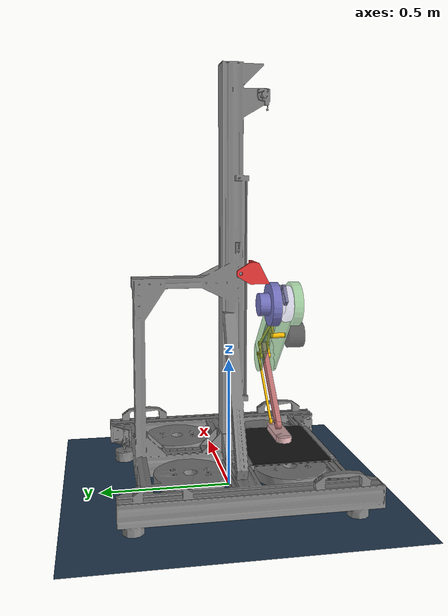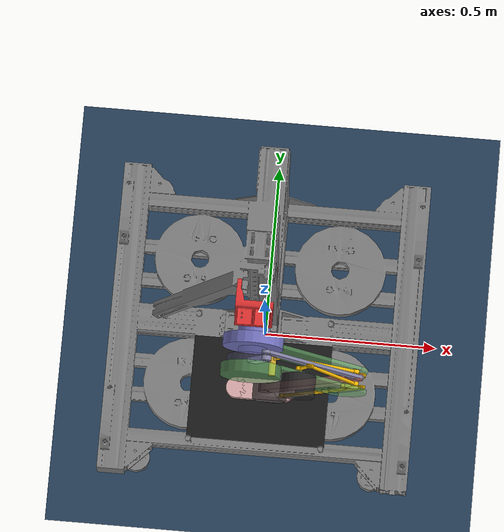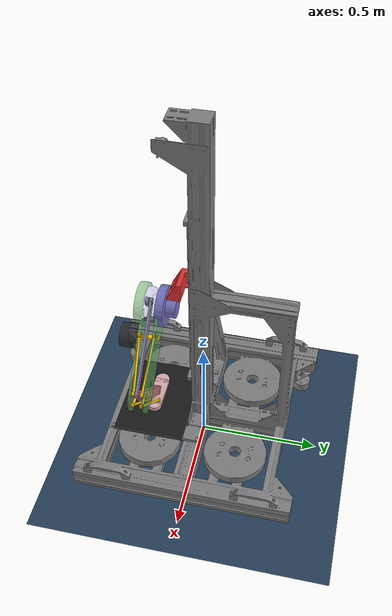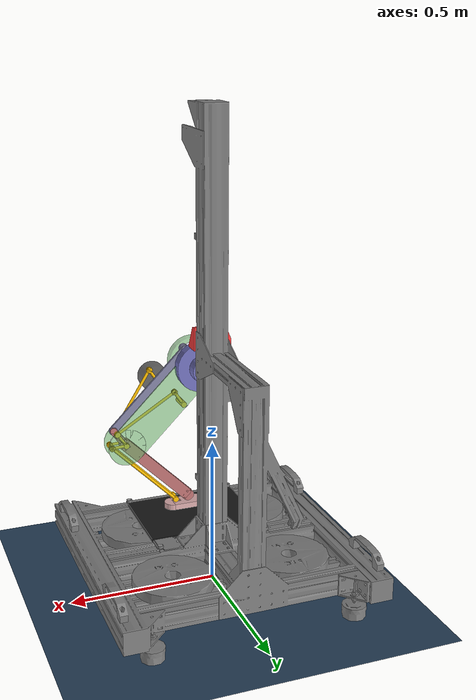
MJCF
<mujoco model="Second Leg">
    <compiler eulerseq="zyx" angle="degree" meshdir="./assets/" texturedir="./assets/" autolimits="true"/>

    <option timestep="0.0005" gravity="0.0 0.0 -9.8"/>
    <!-- Timestep is set to 0.0005 because the standard controller runs at 2 kHz -->
    <!-- Larger values still have stable dynamics -->

    <include file="leg_like_op.xml"/>

    <statistic center="0 0 0.55" extent="1.1"/>

    <visual>
        <headlight diffuse="0.6 0.6 0.6" ambient="0.3 0.3 0.3" specular="0 0 0"/>
        <rgba haze="0.15 0.25 0.35 1"/>
        <global azimuth="150" elevation="-20"/>
        <scale framewidth="0.02" jointwidth="0.02" actuatorlength="1.0"
                actuatorwidth="0.02" constraint="0.05" contactwidth="0.05"/>
    </visual>

    <asset>
        <texture type="skybox" builtin="gradient" rgb1="0.3 0.5 0.7" rgb2="0 0 0" width="512" height="3072"/>
        <texture type="2d" name="groundplane" builtin="checker" mark="edge" rgb1="0.2 0.3 0.4" rgb2="0.1 0.2 0.3"
        markrgb="0.8 0.8 0.8" width="300" height="300"/>
        <material name="groundplane" texture="groundplane" texuniform="true" texrepeat="5 5" reflectance="0.2"/>
    </asset>

    <worldbody>
        <light pos="0 0 3" dir="0 0 -1" directional="false"/>
        <light pos="2.0 0 3" dir="0 0 -1" directional="false"/>
        <light pos="0 2.0 3" dir="0 0 -1" directional="false"/>
        <light pos="-2.0 0 3" dir="0 0 -1" directional="false"/>
        <light pos="0 -2.0 3" dir="0 0 -1" directional="false"/>
        <geom name="floor" size="0 0 .125" type="plane" material="groundplane" conaffinity="15" condim="3"/>
    </worldbody>

</mujoco>

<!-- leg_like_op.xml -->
<mujoco model="leg_two">
    <default>
        <geom contype="1" conaffinity="0" solref="0.005 1.0"/>

        <default class="part">
        <geom group="1" contype="2" conaffinity="1"/>
        </default>

        <default class="mockup">
        <geom group="1" contype="4"/>
        </default>

    </default>

    <asset>
        <material name="pelvis" rgba="0.45 0.45 0.75 1.0" />
        <material name="thigh" rgba="0.45 0.75 0.45 0.6" />
        <material name="shin" rgba="0.75 0.45 0.45 1.0" />
        <material name="foot" rgba="0.86 0.68 0.68 1.0" />
        <material name="loop1" rgba="0.52 0.52 0.65 1.0" />
        <material name="loop2" rgba="1.0 0.75 0.0 1.0" />
        <mesh name="cart" file="cart.STL"/>
        <mesh name="base" file="base.stl"/>
    </asset>

    <worldbody>
        <body name="base" pos="0.0 0.0 0.0">
            <!-- стойка робота -->
            <geom type="mesh" mesh="base" euler="0.0 0.0 90.0"  class="mockup"/>
            <!-- резиновый коврик -->
            <geom type="box" size="0.2 0.15 0.005" pos="0.0 -0.2 0.15" density="7700.0" rgba="0.1 0.1 0.1 1.0"/>

            <body name="cart" pos="0.0325 -0.14 0.8">
                <!-- каретка; к ней подсоединена вся нога -->
                <geom type="mesh" mesh="cart" euler="0.0 -180.0 -90.0" mass="0.2" rgba="0.9 0.2 0.2 1.0" class="mockup"/>
                <joint name="rail" type="slide" range="-0.50 1.5"/>

                <body name="pelvis" pos="-0.05 0.01 -0.085" euler = "0 0 90">
                    <geom type="cylinder" size="0.044  0.020" mass="0.7923" material="pelvis" class="part"/>
                    <geom type="cylinder" size="0.085 0.0168" pos="0 0 0.0368" zaxis="0 0 1" material="pelvis" mass="1.9655" class="part"/>

                    <body name="thigh" pos="0 0 0.1199" euler="-45 0 0">
                        <geom type="cylinder" size="0.085 0.0168" pos="0.0 0.0 0.0" zaxis="0 0 1" mass="1.9655" material="thigh" class="part"/>
                        <geom type="box" size="0.185 0.065 0.005" pos="0.185 0 -0.0168" mass="1.0363" material="thigh" class="part"/>
                        <geom type="cylinder" size="0.065 0.005" pos="0.370 0 -0.0168" mass="0.05" material="thigh" class="part"/>
                        <geom type="box" size="0.185 0.065 0.005" pos="0.185 0 -0.0763" mass="1.0425" material="thigh" class="part"/>
                        <geom type="cylinder" size="0.065 0.005" pos="0.370 0 -0.0763" mass="0.05" material="thigh" class="part"/>

                        <geom type="cylinder" size="0.04 0.012375" pos = "0 0 -0.053925" zaxis = "0 0 1"  mass="0.0829" rgba="0.45 0.45 0.75 0.25" class="part"/>
                        <geom type="cylinder" size="0.07 0.012375" pos = "0 0 -0.029175" zaxis = "0 0 1"  mass="0.0829" rgba="0.45 0.45 0.75 .25" class="part"/>

                        <joint name="hip" type="hinge" ref="-45" range="-135.0 0.0" damping="0.1"/>

                        <body name="shin" pos="0.370 0.0  -0.0475" euler="-90 0 0">
                            <geom type="box" size="0.160 0.02 0.01" pos="0.160 0 0.0" mass="0.6" material="shin" class="part"/>
                            <geom type="cylinder" size="0.02 0.01" pos="0 0 0"  mass="0.01" material="shin" class="part"/>
                            <geom type="cylinder" size="0.02 0.01" pos=".320 0 0" mass="0.01" material="shin" class="part"/>
                            <site name='tip' size = "0.0025" pos = ".291 0 0" material ="shin"/>

                            <body pos="0 0 0" euler = "8.5 0 0">
                                <geom type="box" size="0.034 0.012 0.008" pos="-.034 0 0" mass="0.1625" material = "shin" class = "part"/>
                                <geom type="cylinder" size=".012 .008" pos="-0.068 0 0" mass="0.01" material ="shin" class = "part"/>
                            </body>

                            <joint name="knee" type="hinge" ref="-90" damping="0.1"/>

                            <body name="foot" pos="0.34 0.0 0.0" euler="-45 0 0">
                                <geom type="box" size="0.07 0.01 0.03" pos="0.0 0.016 0.0" mass="0.3142" material="foot" class="part"/>
                                <geom type="cylinder" size="0.03 0.01" pos="0.07 0.016 0" mass="0.01" material="foot" zaxis="0 1 0" class="part"/>
                                <geom type="cylinder" size="0.03 0.01" pos="-0.07 0.016 0" mass="0.01" material="foot" zaxis="0 1 0" class="part"/>
                                <site name="foot_fsr" type="box" group="3" size="0.105 0.0125 0.04" pos="0.0 0.025 0.0"/>
                                <joint name="ankle_passive" type="hinge" ref="-45" damping="0.256"/>
                            </body>

                            <!-- на ступню -->
                            <body name="wishbone_left_up" pos="0.0 0.0 0.0175" euler="-168.1 0 0">
                                    <geom type="cylinder" size="0.005 0.0275" pos="0.0275 0.0 0.0" zaxis="1 0 0" mass="0.0446" material="loop2" class="part"/>
                                    <geom type="cylinder" size="0.01 0.005" pos="0.0 0.0 0.0" zaxis="0 0 1" mass="0.01" material="loop2" class="part"/>
                                    <joint name="joint_wishbone_left_up" type="hinge" damping="0.01"/>

                                    <body name="wishbone_right_up" pos="0.0 0.0 0.0" euler="-60 0 0">
                                        <geom type="cylinder" size="0.005 0.0275" pos="0.0275 0.0 0.0" zaxis="1 0 0" mass="0.0446" material="loop2" class="part"/>
                                        <geom type="cylinder" size="0.01 0.005" pos="0.05 0.0 0.0" zaxis="0 0 1" mass="0.01" material="loop2" class="part"/>
                                        <body name="foot_rod_right_up" pos="0.05 0.0 0.0" euler="228.3 0 0">
                                            <geom type="cylinder" size="0.005 0.160" pos="0.160 0.0 0.0" zaxis="1 0 0" mass="0.0743" material="loop2" class="part"/>
                                            <geom type="cylinder" size="0.01 0.005" pos="0.0 0.0 0.0" zaxis="0 0 1" mass="0.0326" material="loop2" class="part"/>
                                            <geom type="cylinder" size="0.01 0.005" pos="0.320 0.0 0.0" zaxis="0 0 1" mass="0.0130" material="loop2" class="part"/>
                                            <joint name="joint_foot_rod_right_up" type="hinge" damping="0.1"/>
                                        </body>
                                    </body>

                            </body>

                            <body name="wishbone_left_down" pos="0.0 0.0 -0.0175" euler="-168.1 0 0">
                                    <geom type="cylinder" size="0.005 0.0275" pos="0.0275 0.0 0.0" zaxis="1 0 0" mass="0.0446" material="loop2" class="part"/>
                                    <geom type="cylinder" size="0.01 0.005" pos="0.0 0.0 0.0" zaxis="0 0 1" mass="0.01" material="loop2" class="part"/>
                                    <joint name="joint_wishbone_left_down" type="hinge" damping="0.01"/>

                                    <body name="wishbone_right_down" pos="0.0 0.0 0.0" euler="-60 0 0">
                                        <geom type="cylinder" size="0.005 0.0275" pos="0.0275 0.0 0.0" zaxis="1 0 0" mass="0.0446" material="loop2" class="part"/>
                                        <geom type="cylinder" size="0.01 0.005" pos="0.05 0.0 0.0" zaxis="0 0 1" mass="0.01" material="loop2" class="part"/>
                                        <body name="foot_rod_right_down" pos="0.05 0.0 0.0" euler="228.3 0 0">
                                            <geom type="cylinder" size="0.005 0.160" pos="0.160 0.0 0.0" zaxis="1 0 0" mass="0.0743" material="loop2" class="part"/>
                                            <geom type="cylinder" size="0.01 0.005" pos="0.0 0.0 0.0" zaxis="0 0 1" mass="0.0326" material="loop2" class="part"/>
                                            <geom type="cylinder" size="0.01 0.005" pos="0.320 0.0 0.0" zaxis="0 0 1" mass="0.0130" material="loop2" class="part"/>
                                            <joint name="joint_foot_rod_right_down" type="hinge" damping="0.1"/>
                                        </body>
                                    </body>

                            </body>

                        </body>

                        <geom type="cylinder" size="0.049 0.031" pos="0.1342 -0.055  0.02" zaxis="0 0 1" mass="0.960" rgba="0.2 0.2 0.2 .75" class="part"/>
                        <geom type="cylinder" size="0.049 0.031" pos="0.1342  0.055  0.02" zaxis="0 0 1" mass="0.960" rgba="0.2 0.2 0.2 .75" class="part"/>

                        <!-- на ступню -->
                        <body name="foot_lever_up" pos="0.13485 0.055  -0.03" euler="101.8 0 0">
                            <geom type="cylinder" size="0.005 0.0275" pos="0.0275 0.0 0.0" zaxis="1 0 0" mass="0.0749" material="loop2" class="part"/>
                            <geom type="cylinder" size="0.01 0.005" pos="0.055 0.0 0.0" zaxis="0 0 1" mass="0.01" material="loop2" class="part"/>
                            <geom type="cylinder" size="0.01 0.005" pos="0.0 0.0 0.0" zaxis="0 0 1" mass="0.01" material="loop2" class="part"/>
                            <joint name="joint_foot_lever_up" type="hinge" ref="101.8"  damping="0.1"/>

                            <body name="foot_rod_up" pos="0.055 0.0  0.0" euler="-114.9 0 0">
                                <geom type="cylinder" size="0.005 0.121" pos="0.121 0.0 0.0" zaxis="1 0 0" mass="0.0432" material="loop2" class="part"/>
                                <geom type="cylinder" size="0.01 0.005" pos="0.242 0.0 0.0" zaxis="0 0 1" mass="0.0326" material="loop2" class="part"/>
                                <geom type="cylinder" size="0.01 0.005" pos="0.0 0.0 0.0" zaxis="0 0 1" mass="0.0326" material="loop2" class="part"/>
                                <joint name="joint_foot_rod_up" type="hinge" damping="0.1"/>
                            </body>

                        </body>

                        <body name="foot_lever_down" pos="0.13485 -0.055  -0.065" euler="101.8 0 0">
                            <geom type="cylinder" size="0.005 0.0275" pos="0.0275 0.0 0.0" zaxis="1 0 0" mass="0.0398" material="loop2" class="part"/>
                            <geom type="cylinder" size="0.01 0.005" pos="0.055 0.0 0.0" zaxis="0 0 1" mass="0.01" material="loop2" class="part"/>
                            <geom type="cylinder" size="0.01 0.03" pos="0.0 0.0 0.017" zaxis="0 0 1" mass="0.1826" material="loop2" class="part"/>
                            <joint name="joint_foot_lever_down" type="hinge" ref="101.8"  damping="0.265"/>

                            <body name="foot_rod_down" pos="0.055 0.0  0.0" euler="-88.6 0 0">
                                <geom type="cylinder" size="0.005 0.121" pos="0.121 0.0 0.0" zaxis="1 0 0" mass="0.0432" material="loop2" class="part"/>
                                <geom type="cylinder" size="0.01 0.005" pos="0.242 0.0 0.0" zaxis="0 0 1" mass="0.0326" material="loop2" class="part"/>
                                <geom type="cylinder" size="0.01 0.005" pos="0.0 0.0 0.0" zaxis="0 0 1" mass="0.0326" material="loop2" class="part"/>
                                <joint name="joint_foot_rod_down" type="hinge" damping="0.1"/>
                            </body>
                        </body>

                        <body name="knee_lever" pos="0.0 0 -0.0298" euler="98.393 0 0">
                            <geom type="box" size=".034 .015 0.0065" pos = ".034 0 0" material ="loop1" mass="0.0712" zaxis = "0 0 1"  class="part"/>
                            <geom type="cylinder" size=".015 0.0065" pos="0.068 0 0" material ="loop1" mass="0.01" zaxis = "0 0 1" class="part"/>
                            <joint name="joint_knee_lever" type = "hinge" axis="0 0 1" ref = "98.393"/>

                            <body name = 'knee_rod' pos=".068 0 -0.0175" euler = "-98.393 0 0">
                                <geom type="box" size=".185 .014 .0045 " pos = ".185 0 0" material ="loop1" mass="0.2015" zaxis = "0 0 1"  class="part"/>
                                <geom type="cylinder" size=".014 .0045" pos="0 0 0" material ="loop1" mass="0.0432" zaxis = "0 0 1" class="part"/>
                                <geom type="cylinder" size=".014 .0045" pos="0.370 0 0" material ="loop1" mass="0.0432" zaxis = "0 0 1" class="part"/>
                                <joint name="joint_knee_rod" type = "hinge" axis="0 0 1" ref = "-98.393"/>
                            </body>
                        </body>

                    </body>

                </body>

            </body>

        </body>

    </worldbody>

    <equality>
        <connect name="shin_constrain" body1="shin" body2="knee_rod" anchor="-0.0673 -0.0099 0.0" solref="0.0005 1.0"/>
        <connect name="wishbone_constrain_up" body1="foot_rod_up" body2="wishbone_left_up" anchor="0.242 0.0 0.0" solref="0.0005 1.0"/>
        <connect name="wishbone_constrain_down" body1="foot_rod_down" body2="wishbone_left_down" anchor="0.242 0.0 0.0" solref="0.0005 1.0"/>
        <connect name="foot_constrain_up" body1="foot" body2="foot_rod_right_up" anchor="-0.0562 0.004 0.0" solref="0.0005 1.0"/>
        <connect name="foot_constrain_down" body1="foot" body2="foot_rod_right_down" anchor="-0.0562 0.004 0.0" solref="0.0005 1.0"/>
    </equality>

   <actuator>
		<motor name="torque_hip" joint="hip"  gear="1" ctrllimited="true" ctrlrange="-140 140"/>
		<position name ="pos_servo_hip" joint="hip" kp="0"/>
		<velocity name ="vel_servo_hip" joint="hip" kv="0"/>

		<motor name="torque_knee" joint="joint_knee_lever"  gear="1" ctrllimited="true" ctrlrange="-140 140"/>
		<position name ="pos_servo_knee" joint="joint_knee_lever" kp="0"/>
		<velocity name ="vel_servo_knee" joint="joint_knee_lever" kv="0"/>

        <motor name="torque_foot" joint="joint_foot_lever_up"  gear="1" ctrllimited="true" ctrlrange="-140 140"/>

    </actuator>

    <sensor>
        <actuatorfrc name='act_torque_hip' actuator="torque_hip"/>
        <actuatorfrc name='act_torque_knee' actuator="torque_knee"/>
        <actuatorfrc name='act_torque_foot' actuator="torque_foot"/>

    </sensor>
</mujoco>
